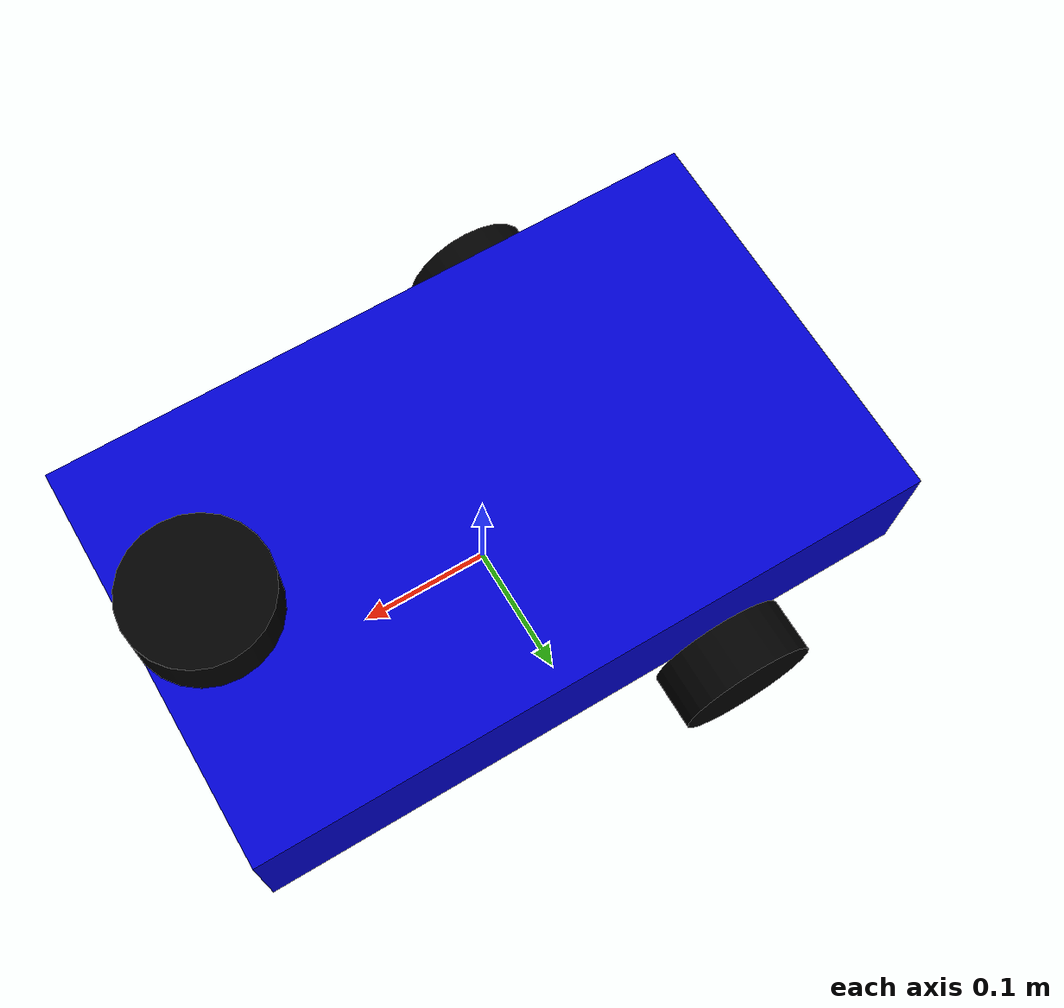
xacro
<?xml version="1.0"?>
<robot xmlns:xacro="http://www.ros.org/wiki/xacro" name="my_bot">

  <material name="blue"><color rgba="0 0 0.8 1"/></material>
  <material name="black"><color rgba="0 0 0 1"/></material>
  <material name="white"><color rgba="1 1 1 1"/></material>

  <link name="base_footprint"/>

  <joint name="base_joint" type="fixed">
    <parent link="base_footprint"/>
    <child link="base_link"/>
    <origin xyz="0 0 0.1" rpy="0 0 0"/>
  </joint>

  <link name="base_link">
    <visual>
      <geometry><box size="0.5 0.3 0.1"/></geometry>
      <material name="blue"/>
    </visual>
    <collision>
      <geometry><box size="0.5 0.3 0.1"/></geometry>
    </collision>
    <inertial>
      <mass value="5.0"/>
      <inertia ixx="0.0416" ixy="0" ixz="0" iyy="0.1083" iyz="0" izz="0.1416"/>
    </inertial>
  </link>

  <link name="left_wheel">
    <visual>
      <geometry><cylinder radius="0.05" length="0.04"/></geometry>
      <material name="black"/>
    </visual>
    <collision>
      <geometry><cylinder radius="0.05" length="0.04"/></geometry>
      <surface>
        <friction>
          <ode>
            <mu>1.0</mu>
            <mu2>1.0</mu2>
          </ode>
        </friction>
      </surface>
    </collision>
    <inertial>
      <mass value="0.5"/>
      <inertia ixx="0.0004" ixy="0" ixz="0" iyy="0.0004" iyz="0" izz="0.0006"/>
    </inertial>
  </link>

  <joint name="left_wheel_joint" type="continuous">
    <parent link="base_link"/>
    <child link="left_wheel"/>
    <origin xyz="-0.1 0.175 -0.05" rpy="-1.5707 0 0"/>
    <axis xyz="0 0 1"/>
  </joint>

  <link name="right_wheel">
    <visual>
      <geometry><cylinder radius="0.05" length="0.04"/></geometry>
      <material name="black"/>
    </visual>
    <collision>
      <geometry><cylinder radius="0.05" length="0.04"/></geometry>
      <surface>
        <friction>
          <ode>
            <mu>1.0</mu>
            <mu2>1.0</mu2>
          </ode>
        </friction>
      </surface>
    </collision>
    <inertial>
      <mass value="0.5"/>
      <inertia ixx="0.0004" ixy="0" ixz="0" iyy="0.0004" iyz="0" izz="0.0006"/>
    </inertial>
  </link>

  <joint name="right_wheel_joint" type="continuous">
    <parent link="base_link"/>
    <child link="right_wheel"/>
    <origin xyz="-0.1 -0.175 -0.05" rpy="-1.5707 0 0"/>
    <axis xyz="0 0 1"/>
  </joint>

  <link name="caster_wheel">
    <visual>
      <geometry><sphere radius="0.05"/></geometry>
      <material name="white"/>
    </visual>
    <collision>
      <geometry><sphere radius="0.05"/></geometry>
      <surface>
        <friction>
          <ode>
            <mu>0.001</mu>
            <mu2>0.001</mu2> </ode>
        </friction>
      </surface>
    </collision>
    <inertial>
      <mass value="0.1"/>
      <inertia ixx="0.0001" ixy="0" ixz="0" iyy="0.0001" iyz="0" izz="0.0001"/>
    </inertial>
  </link>

  <joint name="caster_wheel_joint" type="fixed">
    <parent link="base_link"/>
    <child link="caster_wheel"/>
    <origin xyz="0.2 0 -0.05" rpy="0 0 0"/>
  </joint>

  <link name="laser_frame">
    <visual>
      <geometry><cylinder radius="0.05" length="0.04"/></geometry>
      <material name="black"/>
    </visual>
    <inertial>
      <mass value="0.1"/>
      <inertia ixx="0.0001" ixy="0" ixz="0" iyy="0.0001" iyz="0" izz="0.0001"/>
    </inertial>
  </link>

  <joint name="laser_joint" type="fixed">
    <parent link="base_link"/>
    <child link="laser_frame"/>
    <origin xyz="0.2 0 0.1" rpy="0 0 0"/>
  </joint>

  <gazebo>
    <plugin
      filename="libgz-sim-diff-drive-system.so"
      name="gz::sim::systems::DiffDrive">
      <left_joint>left_wheel_joint</left_joint>
      <right_joint>right_wheel_joint</right_joint>
      <wheel_separation>0.35</wheel_separation>
      <wheel_radius>0.05</wheel_radius>
      <max_linear_acceleration>2</max_linear_acceleration>
      <max_angular_acceleration>4</max_angular_acceleration>
      <max_linear_velocity>1.0</max_linear_velocity>
      <max_angular_velocity>2.0</max_angular_velocity>
      <topic>cmd_vel</topic>
      <odom_topic>odom</odom_topic>
      <tf_topic>tf</tf_topic>
      <frame_id>odom</frame_id>
      <child_frame_id>base_footprint</child_frame_id> <odom_publish_frequency>30</odom_publish_frequency>
    </plugin>
  </gazebo>

 <gazebo reference="laser_frame">
    <sensor name="lidar" type="gpu_lidar">

      <pose>0 0 0 0 0 0</pose>

      <always_on>true</always_on>
      <visualize>true</visualize>
      <update_rate>10</update_rate>
      <topic>scan</topic>
      <ray>
        <scan>
          <horizontal>
            <samples>360</samples>
            <resolution>1</resolution>
            <min_angle>-0.785</min_angle>
            <max_angle>0.785</max_angle>
          </horizontal>
        </scan>
        <range>
          <min>0.10</min>
          <max>12</max>
        </range>
      </ray>
      <gz_frame_id>laser_frame</gz_frame_id>
    </sensor>
  </gazebo>

</robot>
